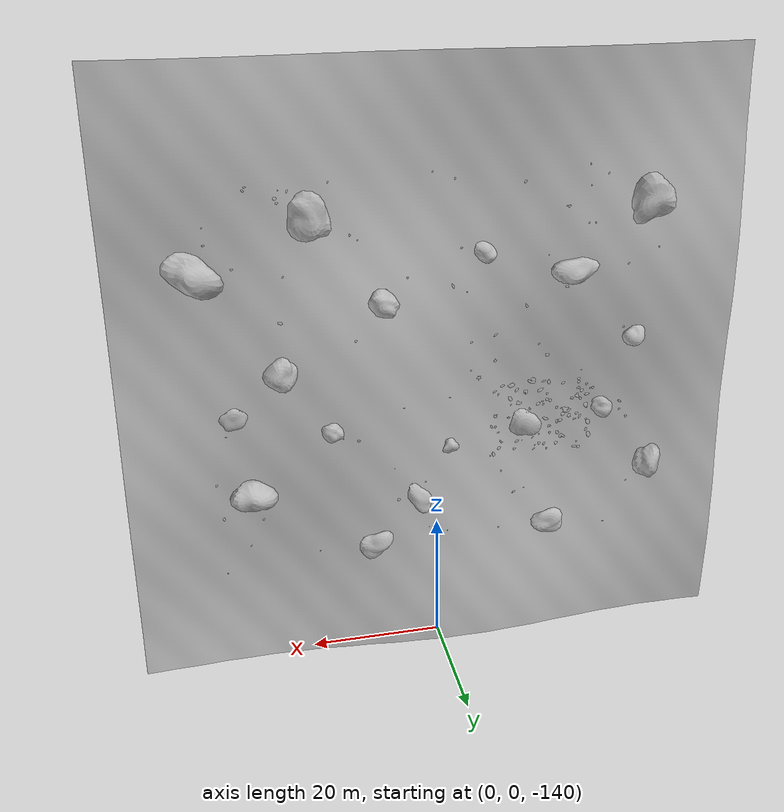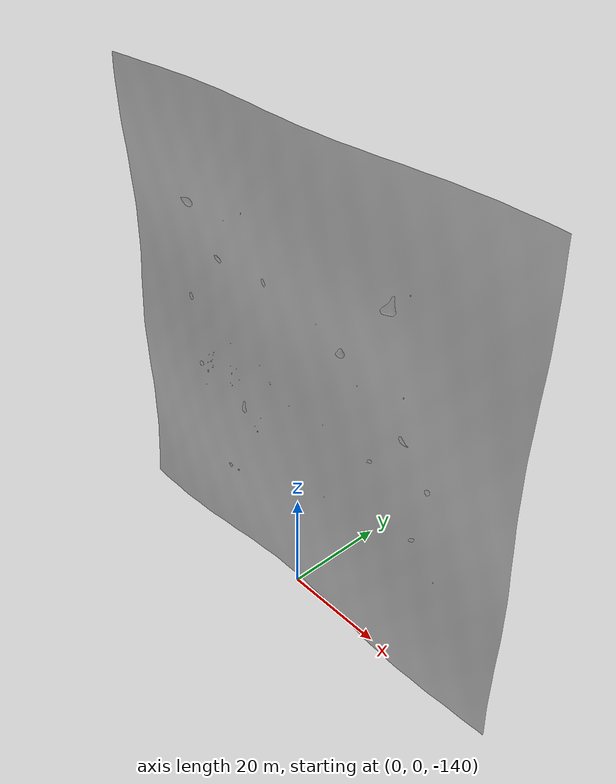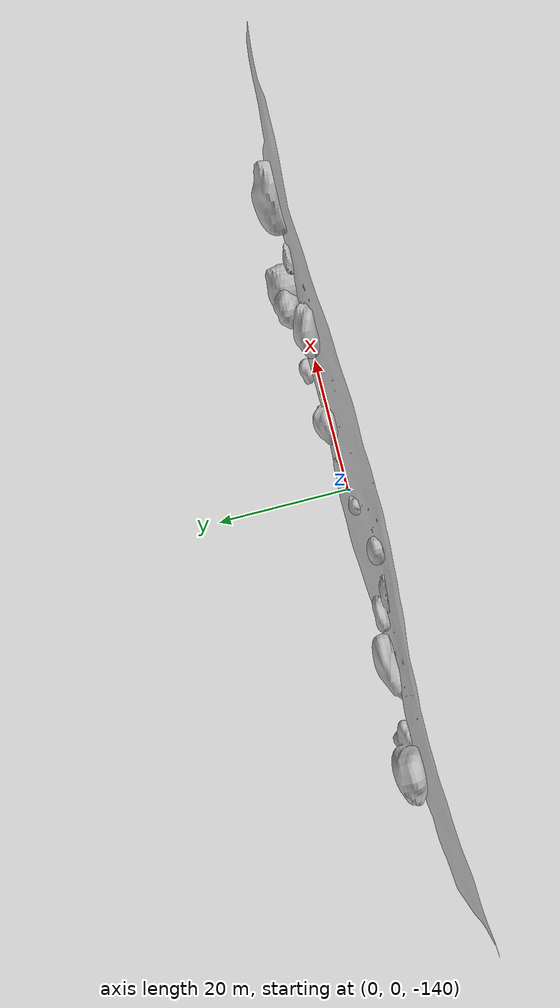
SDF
<sdf version="1.5">
 <world name="underwater_world">
  <physics name="default_physics" default="true" type="ode">
   <max_step_size>0.002</max_step_size>
   <real_time_factor>1</real_time_factor>
   <real_time_update_rate>500</real_time_update_rate>
   <ode><solver><type>quick</type><iters>50</iters><sor>0.5</sor></solver></ode>
  </physics>
  <gravity>0 0 -9.8</gravity>
  <scene>
   <ambient>0.01 0.01 0.01 1.0</ambient>
   <sky><clouds><speed>12</speed></clouds></sky>
   <shadows>1</shadows>
   <fog>
    <color>0.1 0.2 0.3 1.0</color>
    <type>linear</type>
    <density>0.001</density>
    <start>10</start>
    <end>200</end>
   </fog>
  </scene>
  <spherical_coordinates>
   <latitude_deg>56.71897669633431</latitude_deg>
   <longitude_deg>3.515625</longitude_deg>
  </spherical_coordinates>
  <light type="directional" name="sun1">
   <pose>50 0 150 0 0 0</pose>
   <diffuse>1 1 1 1</diffuse>
   <specular>.1 .1 .1 1</specular>
   <direction>0.3 0.3 -1</direction>
   <cast_shadows>false</cast_shadows>
  </light>
  <light type="directional" name="sun_diffuse">
   <pose>-50 0 -150 0 0 0</pose>
   <diffuse>0.6 0.6 0.6 1</diffuse>
   <specular>0 0 0 1</specular>
   <direction>-0.3 -0.3 -1</direction>
   <cast_shadows>false</cast_shadows>
  </light>
  <include><uri>model://underwater_terrain</uri><pose>0 0 -95 0 0 0</pose></include>
  <include><uri>model://underwater_rocks</uri><pose>0 0 -95 0 0 0</pose></include>
  <include><uri>model://underwater_pebbles</uri><pose>0 0 -95 0 0 0</pose></include>
  <include><uri>model://underwater_starfish</uri><pose>0 0 -95 0 0 0</pose></include>
  <plugin name="underwater_current_plugin" filename="libuuv_underwater_current_ros_plugin.so">
   <namespace>hydrodynamics</namespace>
   <constant_current>
    <topic>current_velocity</topic>
    <velocity><mean>0</mean><min>0</min><max>5</max><mu>0.0</mu><noiseAmp>0.0</noiseAmp></velocity>
    <horizontal_angle>
     <mean>0</mean>
     <min>-3.141592653589793238</min>
     <max>3.141592653589793238</max>
     <mu>0.0</mu>
     <noiseAmp>0.0</noiseAmp>
    </horizontal_angle>
    <vertical_angle>
     <mean>0</mean>
     <min>-3.141592653589793238</min>
     <max>3.141592653589793238</max>
     <mu>0.0</mu>
     <noiseAmp>0.0</noiseAmp>
    </vertical_angle>
   </constant_current>
  </plugin>
  <plugin name="sc_interface" filename="libuuv_sc_ros_interface_plugin.so"/>
 </world>
</sdf>

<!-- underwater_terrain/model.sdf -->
<sdf version="1.5">
  <model name="underwater_terrain">
    <static>true</static>
    <link name="link">
      <visual name="visual">
        <geometry>
          <mesh>
            <uri>model://underwater_terrain/meshes/terrain.obj</uri>
          </mesh>
        </geometry>
      </visual>
      <collision name="collision">
        <geometry>
          <mesh>
            <uri>model://underwater_terrain/meshes/terrain.obj</uri>
          </mesh>
        </geometry>
      </collision>
    </link>
  </model>
</sdf>

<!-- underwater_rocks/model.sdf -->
<sdf version="1.5">
  <model name="underwater_rocks">
    <static>true</static>
    <link name="link">
      <visual name="visual">
        <geometry>
          <mesh>
            <uri>model://underwater_rocks/meshes/rocks.obj</uri>
          </mesh>
        </geometry>
      </visual>
      <collision name="collision">
        <geometry>
          <mesh>
            <uri>model://underwater_rocks/meshes/rocks.obj</uri>
          </mesh>
        </geometry>
      </collision>
    </link>
  </model>
</sdf>

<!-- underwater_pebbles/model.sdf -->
<sdf version="1.5">
  <model name="underwater_pebbles">
    <static>true</static>
    <link name="link">
      <visual name="visual">
        <geometry>
          <mesh>
            <uri>model://underwater_pebbles/meshes/pebbles.obj</uri>
          </mesh>
        </geometry>
      </visual>
    </link>
  </model>
</sdf>

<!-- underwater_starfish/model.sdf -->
<sdf version="1.5">
  <model name="underwater_starfish">
    <static>true</static>
    <link name="link">
      <visual name="visual">
        <geometry>
          <mesh>
            <uri>model://underwater_starfish/meshes/starfish.obj</uri>
          </mesh>
        </geometry>
      </visual>
    </link>
  </model>
</sdf>
